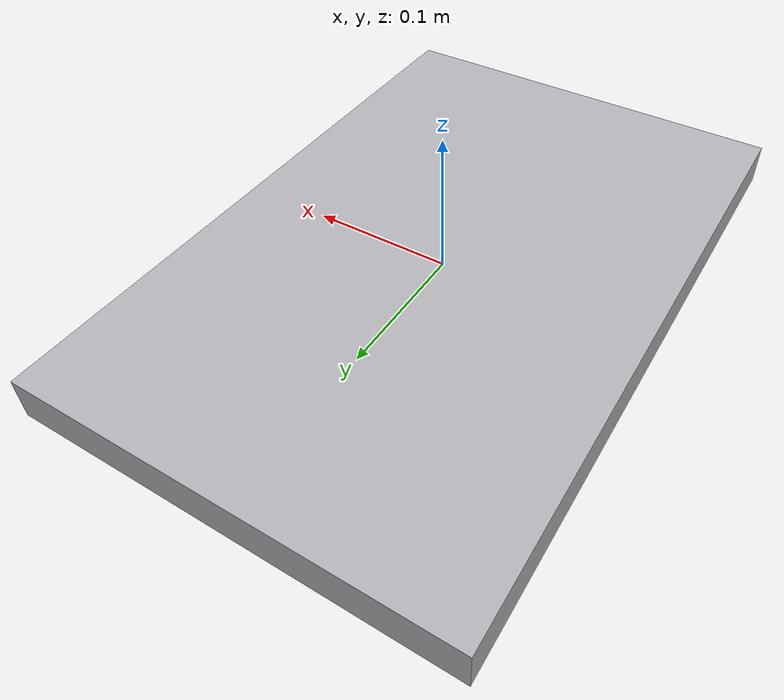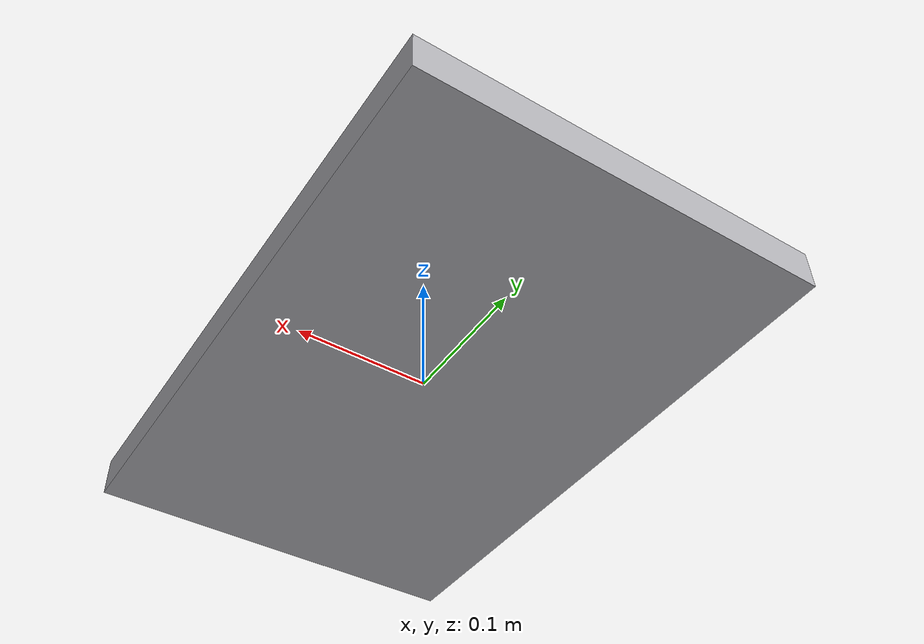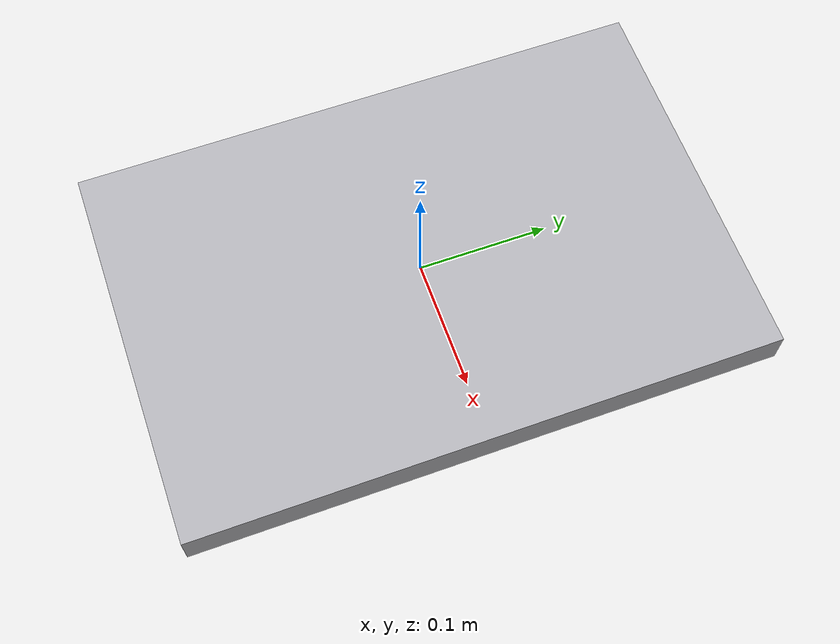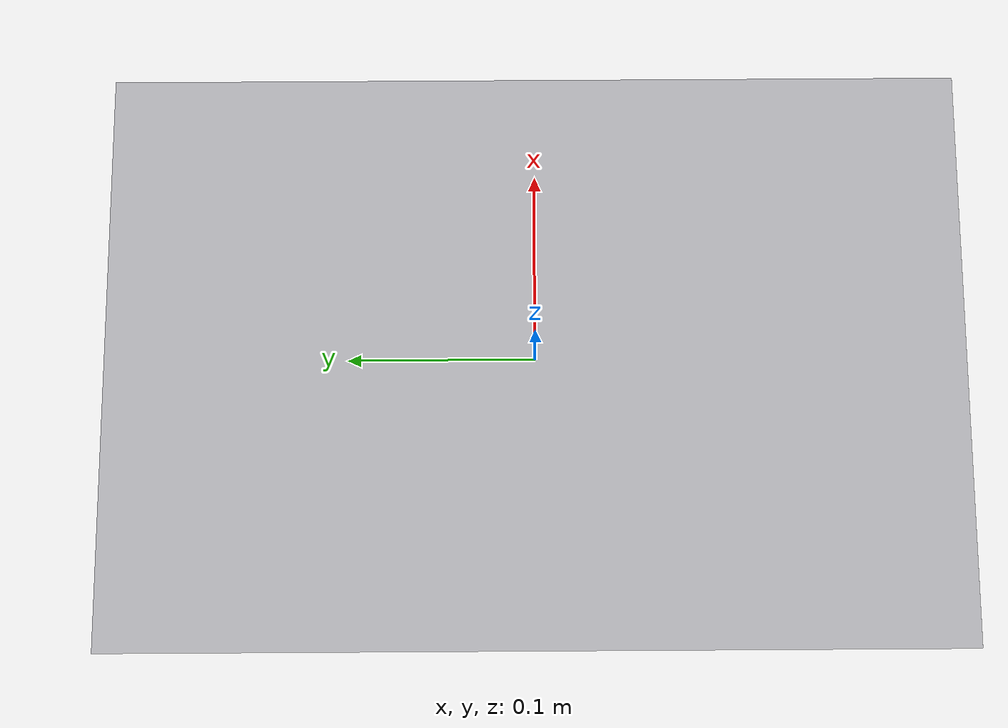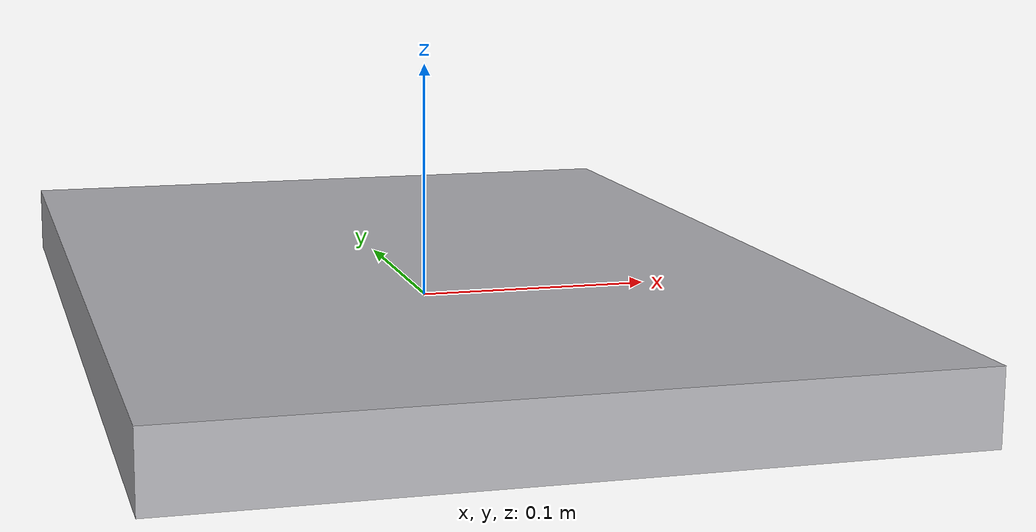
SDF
<?xml version="1.0"?>
<!-- A thin grey mortar strip, spawned by lay_cement.sh as VIKA-5 runs its nozzle
     along the top of the wall VIKA-6 built. -->
<sdf version="1.7">
  <model name="cement_strip">
    <static>true</static>
    <link name="link">
      <visual name="v">
        <geometry><box><size>0.30 0.45 0.03</size></box></geometry>
        <material><ambient>0.6 0.6 0.62 1</ambient><diffuse>0.7 0.7 0.72 1</diffuse></material>
      </visual>
    </link>
  </model>
</sdf>
